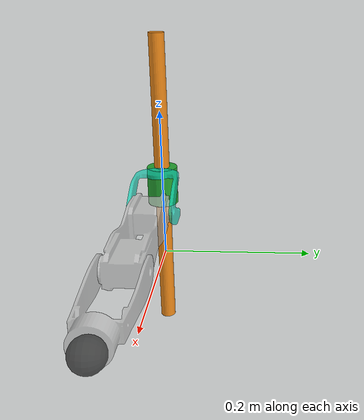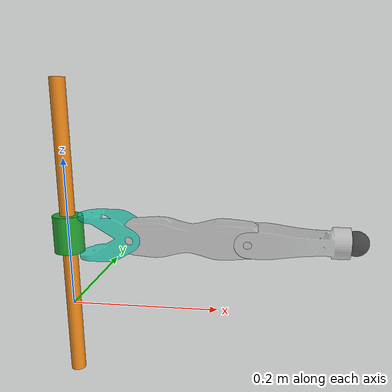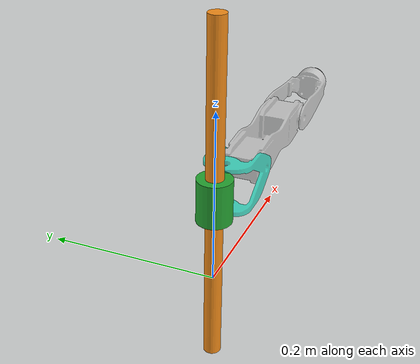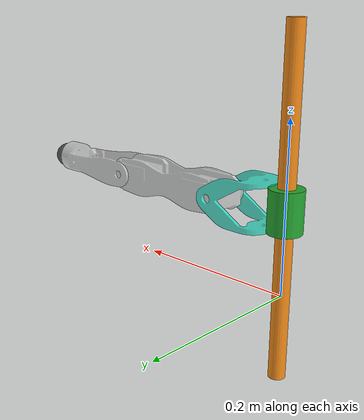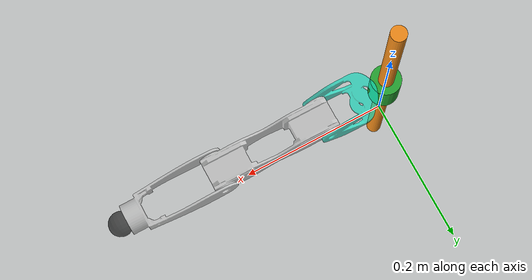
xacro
<?xml version="1.0"?>
<robot xmlns:xacro="http://www.ros.org/wiki/xacro" name="corin">

	<!-- The following included files set up definitions of parts of the robot body -->
	<xacro:include filename="$(find corin_description)/urdfs/common.xacro"/>
	<xacro:include filename="$(find corin_description)/urdfs/materials.xacro"/>
	<!-- Trunk -->
	<xacro:include filename="$(find corin_description)/urdfs/guide_rail/guide_rail.xacro"/>

	<!-- Legs -->
	<xacro:include filename="$(find corin_description)/urdfs/leg/leg.xacro"/>

	<!-- Sensors -->
	<xacro:include filename="$(find corin_description)/urdfs/sensors/sensors.xacro"/>

	<!-- generic simulator_gazebo plugins for starting mechanism control, ros time -->
	<xacro:include filename="$(find corin_description)/robots/guide_rail_gazebo.xacro"/>

	<!-- Utilise macros to build robot -->

	<!-- body -->
	<xacro:RobotTrunk name="base">
		<origin xyz="0.0 0.0 0.0" rpy="0 0 0"/>
	</xacro:RobotTrunk>

	<xacro:RobotLeg
		name="leg"
		parent="guide_rail_link"
		middle_leg="false"
		load_force_sensors="true">
		<origin xyz="0.03 0 0" rpy="0 0 0"/>
	</xacro:RobotLeg>

</robot>

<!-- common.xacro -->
<robot xmlns:xacro="http://www.ros.org/wiki/xacro" name="corin">

	<xacro:property name="PI" value="3.1415926535897931"/>
	<xacro:property name="link_scale" value="1.0"  /> 	<!-- chimney: 1.267/1.067		wall:1.12/0.974  -->
 															<!-- chimney: 1.333 for error margin -->
	<!-- standard distances -->
	<xacro:property name="trunk_x" value="0.23"/> 		<!-- distance between front & back  joints -->
	<xacro:property name="trunk_y" value="0.18"/> 		<!-- distance between left  & right joints -->
	<xacro:property name="trunk_z" value="0.07"/>

	<!--  Joint parameters -->
	<xacro:property name="MX64_damping"   value="0.20" /> 					<!-- real: 0.2 		-->
	<xacro:property name="MX64_effort"    value="6.0" /> 					<!-- real: 2.85 Nm 	-->
	<xacro:property name="MX64_velocity"  value="4.0" />

	<xacro:property name="cox_joint_lim" value="2.05" />	<!-- 57 deg = 1.05 rad -->
	<xacro:property name="cxm_joint_lim" value="2.84" />	<!-- 48 deg = 0.84 rad -->
	<xacro:property name="fem_joint_lim" value="2.22" />	<!-- 127deg -->
	<xacro:property name="tib_joint_lim" value="2.79" />

	<!-- Inertial values -->
	<!-- Trunk  -->
	<xacro:property name="xcom_trunk" value="-0.0"/>
	<xacro:property name="ycom_trunk" value="0.0"/>
	<xacro:property name="zcom_trunk" value="0.0"/>
	<xacro:property name="m_trunk" 	  value="1.58"/> <!-- initially 1.5 -->
	<xacro:property name="ixx_trunk"  value="${ (m_trunk/12)*(trunk_y*trunk_y + trunk_z*trunk_z) } "/>
	<xacro:property name="iyy_trunk"  value="${ (m_trunk/12)*(trunk_x*trunk_x + trunk_z*trunk_z) } "/>
	<xacro:property name="izz_trunk"  value="${ (m_trunk/12)*(trunk_y*trunk_y + trunk_x*trunk_x) } "/>
	<xacro:property name="ixy_trunk"  value="0.0"/>
	<xacro:property name="ixz_trunk"  value="0.0"/>
	<xacro:property name="iyz_trunk"  value="0.0"/>

	<!-- Coxa assembly -->
	<xacro:property name="coxa_l"     value="0.06"  />
	<xacro:property name="coxa_w"     value="0.06"  />
	<xacro:property name="coxa_d"     value="0.055" />
	<xacro:property name="coxa_cl"    value="0.03" />
	<xacro:property name="coxa_com_x" value="0.02471"  />
	<xacro:property name="coxa_com_y" value="0"  />
	<xacro:property name="coxa_com_z" value="0"  />
	<xacro:property name="coxa_m"     value="0.0406" />
	<xacro:property name="coxa_i_xx"  value="0.000038"  />
	<xacro:property name="coxa_i_xy"  value="0.0"  />
	<xacro:property name="coxa_i_xz"  value="0.0"  />
	<xacro:property name="coxa_i_yy"  value="0.000038"  />
	<xacro:property name="coxa_i_yz"  value="0.0"  />
	<xacro:property name="coxa_i_zz"  value="0.000040"  />

	<!-- Femur assembly -->
	<xacro:property name="femur_l"     value="0.15" />
	<xacro:property name="femur_w"     value="0.04" />
	<xacro:property name="femur_d"     value="0.04" />
	<xacro:property name="femur_cl"    value="0.15" />
	<xacro:property name="femur_com_x" value="0.075"  />
	<xacro:property name="femur_com_y" value="0"  />
	<xacro:property name="femur_com_z" value="0"  />
	<xacro:property name="femur_m"     value="0.35" />
	<xacro:property name="femur_i_xx"  value="0.000014"  />
	<xacro:property name="femur_i_xy"  value="0"  />
	<xacro:property name="femur_i_xz"  value="0"  />
	<xacro:property name="femur_i_yy"  value="0.000047"  />
	<xacro:property name="femur_i_yz"  value="0"  />
	<xacro:property name="femur_i_zz"  value="0.000051"  />

	<!--  Tibia assembly -->
	<xacro:property name="tibia_l" value="0.15" />
	<xacro:property name="tibia_w" value="0.04" />
	<xacro:property name="tibia_d" value="0.025" />
	<xacro:property name="tibia_cl" value="0.06" />
	<xacro:property name="tibia_com_x" value="0.0887"  	/>
	<xacro:property name="tibia_com_y" value="0"  		/>
	<xacro:property name="tibia_com_z" value="0"  		/>
	<xacro:property name="tibia_m"     value="0.076" 	/>
	<xacro:property name="tibia_i_xx"  value="0.000025" />
	<xacro:property name="tibia_i_xy"  value="0"  		/>
	<xacro:property name="tibia_i_xz"  value="0"  		/>
	<xacro:property name="tibia_i_yy"  value="0.000105" />
	<xacro:property name="tibia_i_yz"  value="0"  		/>
	<xacro:property name="tibia_i_zz"  value="0.000117"  />

	<!-- Foot -->
	<xacro:property name="foot_r" value="0.016"   />
	<xacro:property name="foot_m" value="0.040"   />
	<xacro:property name="foot_I" value="0.000004" />
	<xacro:property name="foot_friction" value="1.0" />
	<!-- Rectangular box: m*(a^2 + b^2)/12 -->

	<xacro:property name="light_grey" value="0.8" />
	<xacro:property name="dark_grey" value="0.1" />
</robot>

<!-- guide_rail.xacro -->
<robot xmlns:xacro="http://www.ros.org/wiki/xacro" name="corin">

	<!-- Things that are needed only for Gazebo (not the physical robot). These include sensor and controller plugin specifications -->
	<xacro:include filename="$(find corin_description)/urdfs/guide_rail/guide_rail.gazebo.xacro"/>

	<link name="world"/>

	<!-- ================================ Trunk ================================ -->

	<xacro:macro name="RobotTrunk" params="name *origin">
		<!-- Fixed link -->
		<joint name="fixed_link_joint" type="fixed">
			<origin xyz="0 0 0.1" rpy="0 0 0"/>
			<parent link="world"/>
			<child link="guide_rail"/>
		</joint>

		<!-- Main link -->
		<link name="guide_rail">
			<inertial>
				<origin xyz="${xcom_trunk} ${ycom_trunk} ${zcom_trunk}"/>
				<mass value="1"/>
				<inertia ixx="0.0012" iyy="0.0012" izz="0.0018"
						 ixy="0" ixz="0" iyz="0"/>
			</inertial>
			<visual>
				<geometry>
			    	<cylinder length="0.4" radius="0.01"/>
			    </geometry>
				<material name="orange"/>
			</visual>
			<collision>
				<geometry>
			    	<cylinder length="0.4" radius="0.01"/>
			    </geometry>
				<material name="colli"/>
			</collision>
		</link>

		<!-- Linear joint -->
		<joint name="guide_rail_joint" type="prismatic">
			<parent link="guide_rail"/>
			<child link="guide_rail_link"/>
			<axis xyz="0 0 1"/>
			<origin xyz="0 0 0.0" rpy="0 0 0"/>
			<limit effort="30." velocity="2.0" lower="-0.02" upper="0.2"/>
			<dynamics damping="0.5" friction="0" />
		</joint>

		<!-- Main link -->
		<link name="guide_rail_link">
			<inertial>
				<origin xyz="0 0 0"/>
				<mass value="1.0"/>
				<inertia ixx="0.0012" iyy="0.0012" izz="0.0018"
						 ixy="0" ixz="0" iyz="0"/>
			</inertial>
			<visual>
				<geometry>
			    	<cylinder length="0.05" radius="0.02"/>
			    </geometry>
				<material name="green"/>
			</visual>
			<collision>
				<geometry>
			    	<cylinder length="0.01" radius="0.01"/>
			    </geometry>
				<material name="colli"/>
				<origin xyz="0.06 0 0.0" rpy="0 0 0"/>
			</collision>
		</link>

		<!-- Extensions -->
		<xacro:guide_rail_gazebo name="guide_rail"/>
		<xacro:guide_rail_gazebo name="guide_rail_link"/>

		<transmission name="guide_rail_trans">
			<type>transmission_interface/SimpleTransmission</type>
			<joint name="guide_rail_joint">
				<hardwareInterface>EffortJointInterface</hardwareInterface>
			</joint>
			<actuator name="guide_rail_motor">
				<hardwareInterface>EffortJointInterface</hardwareInterface>
				<mechanicalReduction>200</mechanicalReduction>
			</actuator>
		</transmission>

		<gazebo reference="guide_rail_joint">
			<provideFeedback>true</provideFeedback>
		</gazebo>

	</xacro:macro>

</robot>

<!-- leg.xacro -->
<robot xmlns:xacro="http://www.ros.org/wiki/xacro" name="corin">

	<!-- Things that are needed only for Gazebo (not the physical robot). These include sensor and controller plugin specifications -->
	<xacro:include filename="$(find corin_description)/urdfs/leg/leg.transmission.xacro"/>
	<xacro:include filename="$(find corin_description)/urdfs/leg/leg.gazebo.xacro"/>

	<!-- ================================== Leg ================================== -->
	<!-- The xacro macro xacro:corin_leg contains: hip assembly, upper and lower leg -->
	<xacro:macro name="RobotLeg" params="name parent middle_leg *origin load_force_sensors">
		<!-- Joints -->
		<!-- Coxa joint -->
		<joint name="${name}_q1_joint" type="revolute">
			<xacro:insert_block name="origin"/>
			<parent link="${parent}"/>
			<child  link="${name}_hipassembly"/>
			<axis xyz="0 0 1"/>

			<xacro:if value="${middle_leg}"> 	<!-- overwrite joint limits for middle legs-->
				<limit effort="${MX64_effort}" velocity="${MX64_velocity}" lower="${-cxm_joint_lim}" upper="${cxm_joint_lim}"/>
			</xacro:if>
			<xacro:unless value="${middle_leg}"> 	<!-- overwrite joint limits for middle legs-->
				<limit effort="${MX64_effort}" velocity="${MX64_velocity}" lower="${-cox_joint_lim}" upper="${cox_joint_lim}"/>
			</xacro:unless>
			<dynamics damping="${MX64_damping}" friction="0" />
		</joint>
		<!-- Upper leg joint -->
		<joint name="${name}_q2_joint" type="revolute">
			<origin xyz="${coxa_l} 0 0" rpy="${pi/2} 0 0"/>
			<parent link="${name}_hipassembly"/>
			<child  link="${name}_upperleg"/>
			<axis xyz="0 0 1"/>
			<limit effort="${MX64_effort}" velocity="${MX64_velocity}" lower="${-fem_joint_lim}" upper="${fem_joint_lim}"/>
			<dynamics damping="${MX64_damping}" friction="0" />
		</joint>
		<!-- Lower leg joint -->
		<joint name="${name}_q3_joint" type="revolute">
			<origin xyz="${femur_l*link_scale} 0 0" rpy="0 0 0"/>
			<parent link="${name}_upperleg"/>
			<child  link="${name}_lowerleg"/>
			<axis xyz="0 0 1"/>
			<limit effort="${MX64_effort}" velocity="${MX64_velocity}" lower="${-tib_joint_lim}" upper="${tib_joint_lim}"/>
			<dynamics damping="${MX64_damping}" friction="0" />

		</joint>
		<!-- Foot joint -->
		<joint name="${name}_foot_joint" type="fixed">
			<origin xyz="${tibia_l*link_scale-foot_r} 0 0" rpy="0 0 0"/>
			<parent link="${name}_lowerleg"/>
			<child  link="${name}_foot"/>
		</joint>

		<!-- Links -->
		<!-- Hip assembly link -->
		<link name="${name}_hipassembly">
			<visual>
				<origin rpy="0 0 0" xyz="0 0 0"/>
			      <geometry>
			        <mesh filename="package://corin_description/meshes/Coxa.STL" scale="1 1 1"/>
			      </geometry>
		      	<material name="Green1">
			       <color rgba="0.06 0.886 0.764 0.7"/>
			    </material>
		    </visual>

		    <collision>
		    	<origin rpy="0 0 0" xyz="0 0 0"/>
			    <geometry>
			      <mesh filename="package://corin_description/meshes/Coxa_collision.STL" scale="1 1 1"/>
			    </geometry>
		      	<material name="grey"/>
		    </collision>

		    <inertial>
		    	<origin xyz="${coxa_com_x} ${coxa_com_y} ${coxa_com_z}"/>
		      	<mass value="${coxa_m}"/>
		      	<inertia ixx="${coxa_i_xx}" ixy="${coxa_i_xy}" ixz="${coxa_i_xz}" iyy="${coxa_i_yy}" iyz="${coxa_i_yz}" izz="${coxa_i_zz}"/>
		    </inertial>
		  </link>

		<!-- Upper leg link -->
		<link name="${name}_upperleg">
			<visual>
		      	<geometry>
		        	<mesh filename="package://corin_description/meshes/Femur.STL" scale="${link_scale} 1 1"/>
		      	</geometry>
		      	<origin xyz="0 0 0" rpy="0 0 0"/>
		      	<material name="LightGrey">
			       <color rgba="${light_grey} ${light_grey} ${light_grey} 0.7"/>
			    </material>
		    </visual>

		    <collision>
		      	<geometry>
		        	<box size= "${femur_cl} ${femur_w} ${femur_d}"/>
		      	</geometry>
		      	<origin xyz="0.075 0 0" rpy="0 0 0"/>
		      	<material name="colli"/>
		    </collision>

		    <inertial>
		      	<mass value="${femur_m}"/>
		      	<inertia ixx="${femur_i_xx}" ixy="${femur_i_xy}" ixz="${femur_i_xz}" iyy="${femur_i_yy}" iyz="${femur_i_yz}" izz="${femur_i_zz}"/>
		      	<origin xyz="${femur_com_x} ${femur_com_y} ${femur_com_z}"/>
		    </inertial>
		</link>

		<!-- Lower leg link -->
		<link name="${name}_lowerleg">
			<visual>
		      	<geometry>
		      		<mesh filename="package://corin_description/meshes/Tibia.STL" scale="${link_scale+0.05} 1 1"/>
		      	</geometry>
		      	<origin xyz="0 0 0" rpy="${pi/2} 0 0"/>
		      	<material name="LightGrey">
			       <color rgba="${light_grey} ${light_grey} ${light_grey} 0.7"/>
			    </material>
		    </visual>

		    <collision>
		      	<geometry>
					<mesh filename="package://corin_description/meshes/Tibia.STL" scale="${link_scale+0.05} 1 1"/>
		      	</geometry>
		      	<origin xyz="0.0 0 0" rpy="${pi/2} 0 0"/>
		      	<material name="colli"/>
		    </collision>

		    <inertial>
		      	<mass value="${tibia_m}"/>
		      	<inertia ixx="${tibia_i_xx}" ixy="${tibia_i_xy}" ixz="${tibia_i_xz}" iyy="${tibia_i_yy}" iyz="${tibia_i_yz}" izz="${tibia_i_zz}"/>
		      	<origin xyz="${tibia_com_x} ${tibia_com_y} ${tibia_com_z}"/>
		    </inertial>
		</link>

		<!-- Foot link -->
		<link name="${name}_foot">
			<visual>
		      	<geometry>
		        	<sphere radius="${foot_r}"/>
		      	</geometry>
		      	<origin xyz="0 0 0" rpy="0 0 0"/>
		      	<material name="DarkGrey">
			       <color rgba="${dark_grey} ${dark_grey} ${dark_grey} 0.7"/>
			    </material>
		    </visual>

		    <collision>
		      	<geometry>
		        	<sphere radius="${foot_r}"/>
		      	</geometry>
		      	<origin xyz="0 0 0" rpy="0 0 0"/>
		      	<material name="colli"/>
		    </collision>

		    <inertial>
		      	<mass value="${foot_m}"/>
		      	<inertia ixx="${foot_I}" ixy="0" ixz="0" iyy="${foot_I}" iyz="0" izz="${foot_I}" />
		      	<origin xyz="0 0 0"/>
		    </inertial>
		</link>

		<!-- Extensions -->
		<xacro:leg_transmission name="${name}"/>
		<xacro:leg_gazebo name="${name}" load_force_sensors="${load_force_sensors}"/>
	</xacro:macro>

</robot>
